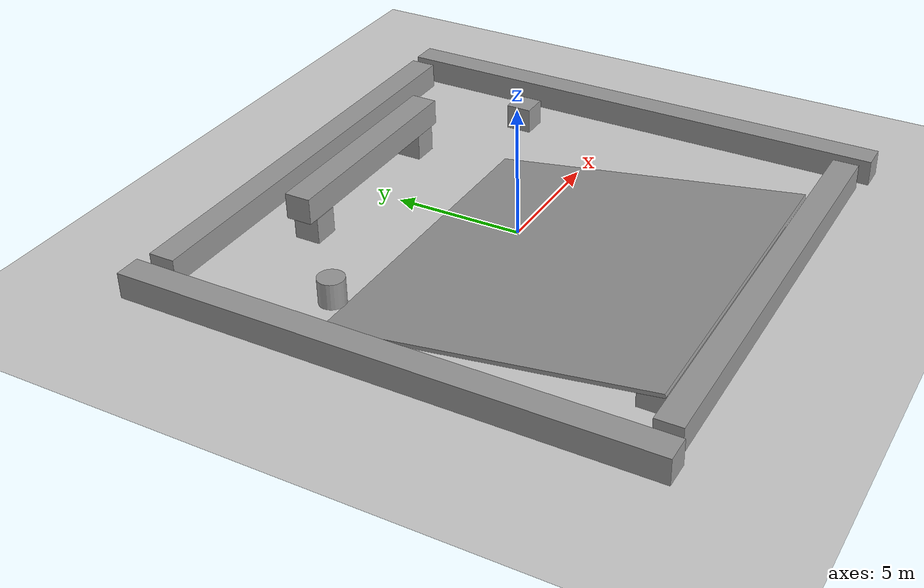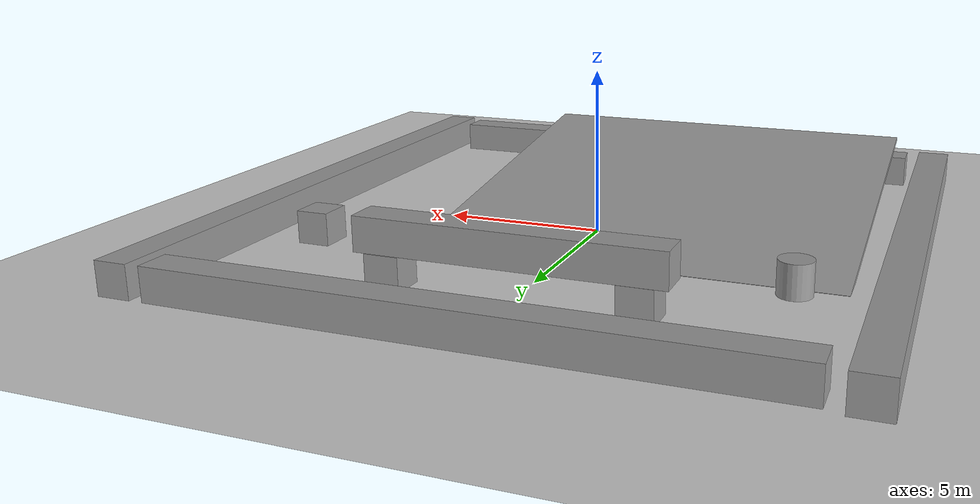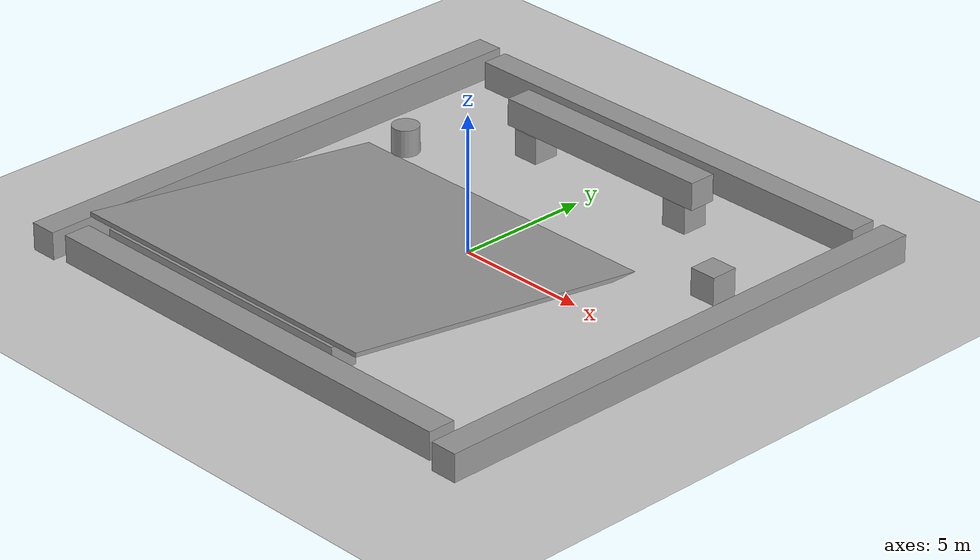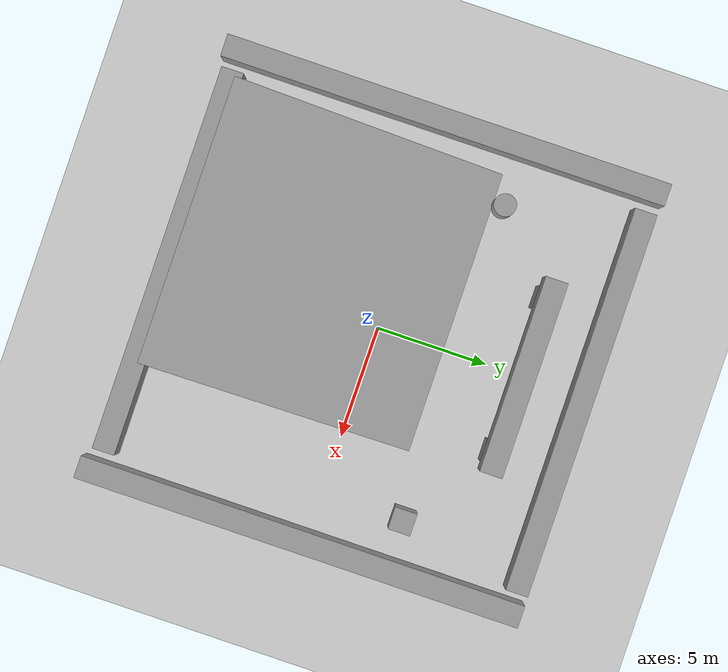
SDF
<sdf version="1.7">
 <world name="default">
  <light name="sun" type="directional">
   <pose>0 0 10 0 -0 0</pose>
   <diffuse>0.8 0.8 0.8 1</diffuse>
   <specular>0.2 0.2 0.2 1</specular>
   <attenuation>
    <range>1000</range>
    <constant>0.9</constant>
    <linear>0.01</linear>
    <quadratic>0.001</quadratic>
   </attenuation>
   <direction>-0.5 0.1 -0.9</direction>
   <spot><inner_angle>0</inner_angle><outer_angle>0</outer_angle><falloff>0</falloff></spot>
  </light>
  <model name="ground_plane">
   <static>1</static>
   <link name="link">
    <collision name="collision">
     <geometry><plane><normal>0 0 1</normal><size>100 100</size></plane></geometry>
     <surface><friction><ode><mu>100</mu><mu2>50</mu2></ode></friction></surface>
    </collision>
    <visual name="visual">
     <cast_shadows>0</cast_shadows>
     <geometry><plane><normal>0 0 1</normal><size>100 100</size></plane></geometry>
     <material>
      <script><uri>file://media/materials/scripts/gazebo.material</uri><name>Gazebo/Grey</name></script>
     </material>
    </visual>
   </link>
  </model>
  <gravity>0 0 -9.8</gravity>
  <magnetic_field>6e-06 2.3e-05 -4.2e-05</magnetic_field>
  <atmosphere type="adiabatic"/>
  <physics type="ode">
   <max_step_size>0.001</max_step_size>
   <real_time_factor>1</real_time_factor>
   <real_time_update_rate>1000</real_time_update_rate>
  </physics>
  <scene><ambient>0.4 0.4 0.4 1</ambient><background>0.7 0.7 0.7 1</background><shadows>1</shadows></scene>
  <spherical_coordinates>
   <surface_model>EARTH_WGS84</surface_model>
   <latitude_deg>0</latitude_deg>
   <longitude_deg>0</longitude_deg>
   <elevation>0</elevation>
   <heading_deg>0</heading_deg>
  </spherical_coordinates>
  <model name="unit_box_clone">
   <pose>9.78235 -0.237824 0.5 0 -0 0</pose>
   <link name="link">
    <inertial>
     <mass>1</mass>
     <inertia>
      <ixx>0.166667</ixx>
      <ixy>0</ixy>
      <ixz>0</ixz>
      <iyy>0.166667</iyy>
      <iyz>0</iyz>
      <izz>0.166667</izz>
     </inertia>
    </inertial>
    <collision name="collision"><geometry><box><size>1 20.1357 1</size></box></geometry></collision>
    <visual name="visual">
     <geometry><box><size>1 20.1357 1</size></box></geometry>
     <material>
      <script><name>Gazebo/Grey</name><uri>file://media/materials/scripts/gazebo.material</uri></script>
     </material>
    </visual>
   </link>
  </model>
  <model name="unit_box_clone_clone">
   <pose>-9.39771 -0.089297 0.5 0 -0 0</pose>
   <link name="link">
    <inertial>
     <mass>1</mass>
     <inertia>
      <ixx>0.166667</ixx>
      <ixy>0</ixy>
      <ixz>0</ixz>
      <iyy>0.166667</iyy>
      <iyz>0</iyz>
      <izz>0.166667</izz>
     </inertia>
    </inertial>
    <collision name="collision"><geometry><box><size>1 20.1357 1</size></box></geometry></collision>
    <visual name="visual">
     <geometry><box><size>1 20.1357 1</size></box></geometry>
     <material>
      <script><name>Gazebo/Grey</name><uri>file://media/materials/scripts/gazebo.material</uri></script>
     </material>
    </visual>
   </link>
  </model>
  <model name="unit_box">
   <pose>0.168692 -9.461 0.5 0 -0 0</pose>
   <link name="link">
    <inertial>
     <mass>1</mass>
     <inertia>
      <ixx>0.166667</ixx>
      <ixy>0</ixy>
      <ixz>0</ixz>
      <iyy>0.166667</iyy>
      <iyz>0</iyz>
      <izz>0.166667</izz>
     </inertia>
    </inertial>
    <collision name="collision"><geometry><box><size>17.3159 1 1</size></box></geometry></collision>
    <visual name="visual">
     <geometry><box><size>17.3159 1 1</size></box></geometry>
     <material>
      <script><name>Gazebo/Grey</name><uri>file://media/materials/scripts/gazebo.material</uri></script>
     </material>
    </visual>
   </link>
  </model>
  <model name="unit_box_clone_0">
   <pose>0.221378 9.31685 0.5 0 -0 0</pose>
   <link name="link">
    <inertial>
     <mass>1</mass>
     <inertia>
      <ixx>0.166667</ixx>
      <ixy>0</ixy>
      <ixz>0</ixz>
      <iyy>0.166667</iyy>
      <iyz>0</iyz>
      <izz>0.166667</izz>
     </inertia>
    </inertial>
    <collision name="collision"><geometry><box><size>17.3159 1 1</size></box></geometry></collision>
    <visual name="visual">
     <geometry><box><size>17.3159 1 1</size></box></geometry>
     <material>
      <script><name>Gazebo/Grey</name><uri>file://media/materials/scripts/gazebo.material</uri></script>
     </material>
    </visual>
   </link>
  </model>
  <model name="unit_box_clone_0_clone">
   <pose>-0.003459 6.48855 1.51 0 -0 0</pose>
   <link name="link">
    <inertial>
     <mass>1</mass>
     <inertia>
      <ixx>0.166667</ixx>
      <ixy>0</ixy>
      <ixz>0</ixz>
      <iyy>0.166667</iyy>
      <iyz>0</iyz>
      <izz>0.166667</izz>
     </inertia>
    </inertial>
    <collision name="collision"><geometry><box><size>8.657 1 1</size></box></geometry></collision>
    <visual name="visual">
     <geometry><box><size>8.657 1 1</size></box></geometry>
     <material>
      <script><name>Gazebo/Grey</name><uri>file://media/materials/scripts/gazebo.material</uri></script>
     </material>
    </visual>
   </link>
  </model>
  <model name="unit_box_0">
   <pose>-3.46579 6.47015 0.5 0 -0 0</pose>
   <link name="link">
    <inertial>
     <mass>1</mass>
     <inertia>
      <ixx>0.166667</ixx>
      <ixy>0</ixy>
      <ixz>0</ixz>
      <iyy>0.166667</iyy>
      <iyz>0</iyz>
      <izz>0.166667</izz>
     </inertia>
    </inertial>
    <collision name="collision"><geometry><box><size>1 1 1</size></box></geometry></collision>
    <visual name="visual">
     <geometry><box><size>1 1 1</size></box></geometry>
     <material>
      <script><name>Gazebo/Grey</name><uri>file://media/materials/scripts/gazebo.material</uri></script>
     </material>
    </visual>
   </link>
  </model>
  <model name="unit_box_1">
   <pose>3.51437 6.49737 0.5 0 -0 0</pose>
   <link name="link">
    <inertial>
     <mass>1</mass>
     <inertia>
      <ixx>0.166667</ixx>
      <ixy>0</ixy>
      <ixz>0</ixz>
      <iyy>0.166667</iyy>
      <iyz>0</iyz>
      <izz>0.166667</izz>
     </inertia>
    </inertial>
    <collision name="collision"><geometry><box><size>1 1 1</size></box></geometry></collision>
    <visual name="visual">
     <geometry><box><size>1 1 1</size></box></geometry>
     <material>
      <script><name>Gazebo/Grey</name><uri>file://media/materials/scripts/gazebo.material</uri></script>
     </material>
    </visual>
   </link>
  </model>
  <model name="unit_box_clone_0_clone_clone">
   <pose>-1.73409 -3.07155 0.766579 -0.14 0 0</pose>
   <link name="link">
    <inertial>
     <mass>1</mass>
     <inertia>
      <ixx>0.166667</ixx>
      <ixy>0</ixy>
      <ixz>0</ixz>
      <iyy>0.166667</iyy>
      <iyz>0</iyz>
      <izz>0.166667</izz>
     </inertia>
    </inertial>
    <collision name="collision"><geometry><box><size>12.807 12.3088 0.152351</size></box></geometry></collision>
    <visual name="visual">
     <geometry><box><size>12.807 12.3088 0.152351</size></box></geometry>
     <material>
      <script><name>Gazebo/Grey</name><uri>file://media/materials/scripts/gazebo.material</uri></script>
     </material>
    </visual>
   </link>
  </model>
  <model name="unit_box_2">
   <pose>-2.05787 -8.45987 0.777136 0 -0 0</pose>
   <link name="link">
    <inertial>
     <mass>1</mass>
     <inertia>
      <ixx>0.166667</ixx>
      <ixy>0</ixy>
      <ixz>0</ixz>
      <iyy>0.166667</iyy>
      <iyz>0</iyz>
      <izz>0.166667</izz>
     </inertia>
    </inertial>
    <collision name="collision"><geometry><box><size>10.7554 1 0.966326</size></box></geometry></collision>
    <visual name="visual">
     <geometry><box><size>10.7554 1 0.966326</size></box></geometry>
     <material>
      <script><name>Gazebo/Grey</name><uri>file://media/materials/scripts/gazebo.material</uri></script>
     </material>
    </visual>
   </link>
  </model>
  <model name="unit_box_3">
   <pose>7.52655 3.68372 0.5 0 -0 0</pose>
   <link name="link">
    <inertial>
     <mass>1</mass>
     <inertia>
      <ixx>0.166667</ixx>
      <ixy>0</ixy>
      <ixz>0</ixz>
      <iyy>0.166667</iyy>
      <iyz>0</iyz>
      <izz>0.166667</izz>
     </inertia>
    </inertial>
    <collision name="collision"><geometry><box><size>1 1 1</size></box></geometry></collision>
    <visual name="visual">
     <geometry><box><size>1 1 1</size></box></geometry>
     <material>
      <script><name>Gazebo/Grey</name><uri>file://media/materials/scripts/gazebo.material</uri></script>
     </material>
    </visual>
   </link>
  </model>
  <model name="unit_cylinder">
   <pose>-6.75421 3.48739 0.5 0 -0 0</pose>
   <link name="link">
    <inertial>
     <mass>1</mass>
     <inertia><ixx>0.145833</ixx><ixy>0</ixy><ixz>0</ixz><iyy>0.145833</iyy><iyz>0</iyz><izz>0.125</izz></inertia>
    </inertial>
    <collision name="collision">
     <geometry><cylinder><radius>0.5</radius><length>1</length></cylinder></geometry>
    </collision>
    <visual name="visual">
     <geometry><cylinder><radius>0.5</radius><length>1</length></cylinder></geometry>
     <material>
      <script><name>Gazebo/Grey</name><uri>file://media/materials/scripts/gazebo.material</uri></script>
     </material>
    </visual>
   </link>
  </model>
 </world>
</sdf>
